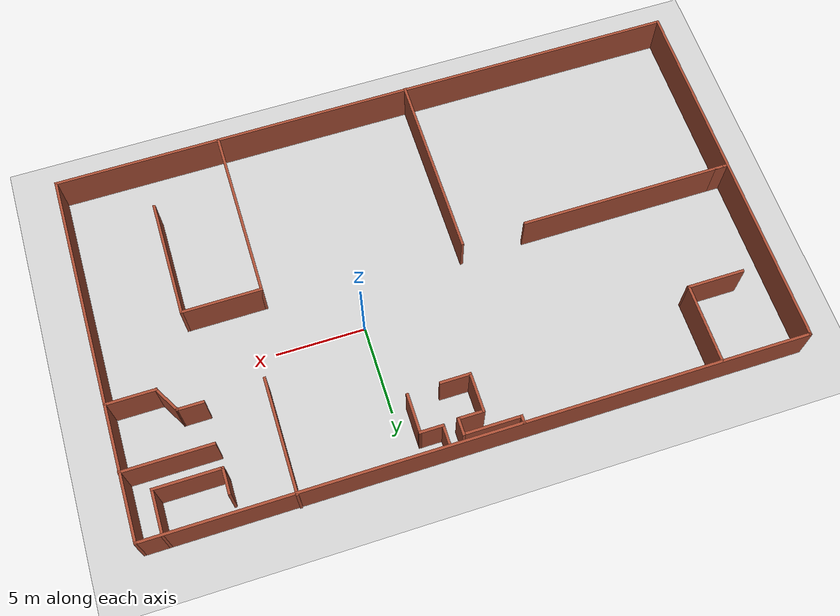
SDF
<sdf version="1.6">
 <world name="default">
  <light name="sun" type="directional">
   <pose>0 0 10 0 -0 0</pose>
   <diffuse>0.8 0.8 0.8 1</diffuse>
   <specular>0.2 0.2 0.2 1</specular>
   <attenuation>
    <range>1000</range>
    <constant>0.9</constant>
    <linear>0.01</linear>
    <quadratic>0.001</quadratic>
   </attenuation>
   <direction>-0.5 0.1 -0.9</direction>
  </light>
  <model name="ground_plane">
   <static>1</static>
   <link name="link">
    <collision name="collision">
     <geometry><plane><normal>0 0 1</normal><size>100 100</size></plane></geometry>
     <surface>
      <contact><collide_bitmask>65535</collide_bitmask></contact>
      <friction><ode><mu>100</mu><mu2>50</mu2></ode></friction>
     </surface>
    </collision>
    <visual name="visual">
     <cast_shadows>0</cast_shadows>
     <geometry><plane><normal>0 0 1</normal><size>100 100</size></plane></geometry>
     <material>
      <script><uri>file://media/materials/scripts/gazebo.material</uri><name>Gazebo/Grey</name></script>
     </material>
    </visual>
   </link>
  </model>
  <gravity>0 0 -9.8</gravity>
  <magnetic_field>6e-06 2.3e-05 -4.2e-05</magnetic_field>
  <atmosphere type="adiabatic"/>
  <physics name="default_physics" default="0" type="ode">
   <max_step_size>0.001</max_step_size>
   <real_time_factor>1</real_time_factor>
   <real_time_update_rate>1000</real_time_update_rate>
  </physics>
  <scene><ambient>0.4 0.4 0.4 1</ambient><background>0.7 0.7 0.7 1</background><shadows>1</shadows></scene>
  <audio><device>default</device></audio>
  <spherical_coordinates>
   <surface_model>EARTH_WGS84</surface_model>
   <latitude_deg>0</latitude_deg>
   <longitude_deg>0</longitude_deg>
   <elevation>0</elevation>
   <heading_deg>0</heading_deg>
  </spherical_coordinates>
  <model name="Untitled">
   <pose>-3.93 -2.08565 0 0 -0 0</pose>
   <link name="Wall_0">
    <collision name="Wall_0_Collision">
     <geometry><box><size>21 0.15 2.5</size></box></geometry>
     <pose>0 0 1.25 0 -0 0</pose>
    </collision>
    <visual name="Wall_0_Visual">
     <pose>0 0 1.25 0 -0 0</pose>
     <geometry><box><size>21 0.15 2.5</size></box></geometry>
     <material>
      <script><uri>file://media/materials/scripts/gazebo.material</uri><name>Gazebo/Bricks</name></script>
      <ambient>1 1 1 1</ambient>
     </material>
     <meta><layer>0</layer></meta>
    </visual>
    <pose>-17.9354 -0.020131 0 0 -0 -1.5708</pose>
   </link>
   <link name="Wall_1">
    <collision name="Wall_1_Collision">
     <geometry><box><size>36 0.15 2.5</size></box></geometry>
     <pose>0 0 1.25 0 -0 0</pose>
    </collision>
    <visual name="Wall_1_Visual">
     <pose>0 0 1.25 0 -0 0</pose>
     <geometry><box><size>36 0.15 2.5</size></box></geometry>
     <material>
      <script><uri>file://media/materials/scripts/gazebo.material</uri><name>Gazebo/Bricks</name></script>
      <ambient>1 1 1 1</ambient>
     </material>
     <meta><layer>0</layer></meta>
    </visual>
    <pose>-0.010376 -10.4451 0 0 -0 0</pose>
   </link>
   <link name="Wall_10">
    <collision name="Wall_10_Collision">
     <geometry><box><size>6.75 0.15 2.5</size></box></geometry>
     <pose>0 0 1.25 0 -0 0</pose>
    </collision>
    <visual name="Wall_10_Visual">
     <pose>0 0 1.25 0 -0 0</pose>
     <geometry><box><size>6.75 0.15 2.5</size></box></geometry>
     <material>
      <script><uri>file://media/materials/scripts/gazebo.material</uri><name>Gazebo/Bricks</name></script>
      <ambient>1 1 1 1</ambient>
     </material>
     <meta><layer>0</layer></meta>
    </visual>
    <pose>13.0562 -4.09155 0 0 -0 -1.5708</pose>
   </link>
   <link name="Wall_12">
    <collision name="Wall_12_Collision">
     <geometry><box><size>2.5 0.15 2.5</size></box></geometry>
     <pose>0 0 1.25 0 -0 0</pose>
    </collision>
    <visual name="Wall_12_Visual">
     <pose>0 0 1.25 0 -0 0</pose>
     <geometry><box><size>2.5 0.15 2.5</size></box></geometry>
     <material>
      <script><uri>file://media/materials/scripts/gazebo.material</uri><name>Gazebo/Bricks</name></script>
      <ambient>1 1 1 1</ambient>
     </material>
     <meta><layer>0</layer></meta>
    </visual>
    <pose>16.5818 9.22987 0 0 -0 -1.5708</pose>
   </link>
   <link name="Wall_13">
    <collision name="Wall_13_Collision">
     <geometry><box><size>3.75 0.15 2.5</size></box></geometry>
     <pose>0 0 1.25 0 -0 0</pose>
    </collision>
    <visual name="Wall_13_Visual">
     <pose>0 0 1.25 0 -0 0</pose>
     <geometry><box><size>3.75 0.15 2.5</size></box></geometry>
     <material>
      <script><uri>file://media/materials/scripts/gazebo.material</uri><name>Gazebo/Bricks</name></script>
      <ambient>1 1 1 1</ambient>
     </material>
     <meta><layer>0</layer></meta>
    </visual>
    <pose>14.7818 8.05487 0 0 -0 3.14159</pose>
   </link>
   <link name="Wall_15">
    <collision name="Wall_15_Collision">
     <geometry><box><size>5 0.15 2.5</size></box></geometry>
     <pose>0 0 1.25 0 -0 0</pose>
    </collision>
    <visual name="Wall_15_Visual">
     <pose>0 0 1.25 0 -0 0</pose>
     <geometry><box><size>5 0.15 2.5</size></box></geometry>
     <material>
      <script><uri>file://media/materials/scripts/gazebo.material</uri><name>Gazebo/Bricks</name></script>
      <ambient>1 1 1 1</ambient>
     </material>
     <meta><layer>0</layer></meta>
    </visual>
    <pose>15.5104 6.7132 0 0 -0 3.14159</pose>
   </link>
   <link name="Wall_17">
    <collision name="Wall_17_Collision">
     <geometry><box><size>1.5 0.15 2.5</size></box></geometry>
     <pose>0 0 1.25 0 -0 0</pose>
    </collision>
    <visual name="Wall_17_Visual">
     <pose>0 0 1.25 0 -0 0</pose>
     <geometry><box><size>1.5 0.15 2.5</size></box></geometry>
     <material>
      <script><uri>file://media/materials/scripts/gazebo.material</uri><name>Gazebo/Bricks</name></script>
      <ambient>1 1 1 1</ambient>
     </material>
     <meta><layer>0</layer></meta>
    </visual>
    <pose>12.9818 8.72987 0 0 -0 1.5708</pose>
   </link>
   <link name="Wall_19">
    <collision name="Wall_19_Collision">
     <geometry><box><size>6.5 0.15 2.5</size></box></geometry>
     <pose>0 0 1.25 0 -0 0</pose>
    </collision>
    <visual name="Wall_19_Visual">
     <pose>0 0 1.25 0 -0 0</pose>
     <geometry><box><size>6.5 0.15 2.5</size></box></geometry>
     <material>
      <script><uri>file://media/materials/scripts/gazebo.material</uri><name>Gazebo/Bricks</name></script>
      <ambient>1 1 1 1</ambient>
     </material>
     <meta><layer>0</layer></meta>
    </visual>
    <pose>9.8137 7.2914 0 0 -0 -1.5708</pose>
   </link>
   <link name="Wall_2">
    <collision name="Wall_2_Collision">
     <geometry><box><size>21 0.15 2.5</size></box></geometry>
     <pose>0 0 1.25 0 -0 0</pose>
    </collision>
    <visual name="Wall_2_Visual">
     <pose>0 0 1.25 0 -0 0</pose>
     <geometry><box><size>21 0.15 2.5</size></box></geometry>
     <material>
      <script><uri>file://media/materials/scripts/gazebo.material</uri><name>Gazebo/Bricks</name></script>
      <ambient>1 1 1 1</ambient>
     </material>
     <meta><layer>0</layer></meta>
    </visual>
    <pose>17.9146 -0.020131 0 0 -0 1.5708</pose>
   </link>
   <link name="Wall_21">
    <collision name="Wall_21_Collision">
     <geometry><box><size>11.75 0.15 2.5</size></box></geometry>
     <pose>0 0 1.25 0 -0 0</pose>
    </collision>
    <visual name="Wall_21_Visual">
     <pose>0 0 1.25 0 -0 0</pose>
     <geometry><box><size>11.75 0.15 2.5</size></box></geometry>
     <material>
      <script><uri>file://media/materials/scripts/gazebo.material</uri><name>Gazebo/Bricks</name></script>
      <ambient>1 1 1 1</ambient>
     </material>
     <meta><layer>0</layer></meta>
    </visual>
    <pose>-11.7662 -0.239453 0 0 -0 0</pose>
   </link>
   <link name="Wall_23">
    <collision name="Wall_23_Collision">
     <geometry><box><size>10.5 0.15 2.5</size></box></geometry>
     <pose>0 0 1.25 0 -0 0</pose>
    </collision>
    <visual name="Wall_23_Visual">
     <pose>0 0 1.25 0 -0 0</pose>
     <geometry><box><size>10.5 0.15 2.5</size></box></geometry>
     <material>
      <script><uri>file://media/materials/scripts/gazebo.material</uri><name>Gazebo/Bricks</name></script>
      <ambient>1 1 1 1</ambient>
     </material>
     <meta><layer>0</layer></meta>
    </visual>
    <pose>-2.30729 -5.2914 0 0 -0 -1.5708</pose>
   </link>
   <link name="Wall_26">
    <collision name="Wall_26_Collision">
     <geometry><box><size>0.75 0.15 2.5</size></box></geometry>
     <pose>0 0 1.25 0 -0 0</pose>
    </collision>
    <visual name="Wall_26_Visual">
     <pose>0 0 1.25 0 -0 0</pose>
     <geometry><box><size>0.75 0.15 2.5</size></box></geometry>
     <material>
      <script><uri>file://media/materials/scripts/gazebo.material</uri><name>Gazebo/Bricks</name></script>
      <ambient>1 1 1 1</ambient>
     </material>
     <meta><layer>0</layer></meta>
    </visual>
    <pose>-17.5274 -0.23764 0 0 -0 3.14159</pose>
   </link>
   <link name="Wall_28">
    <collision name="Wall_28_Collision">
     <geometry><box><size>0.5 0.15 2.5</size></box></geometry>
     <pose>0 0 1.25 0 -0 0</pose>
    </collision>
    <visual name="Wall_28_Visual">
     <pose>0 0 1.25 0 -0 0</pose>
     <geometry><box><size>0.5 0.15 2.5</size></box></geometry>
     <material>
      <script><uri>file://media/materials/scripts/gazebo.material</uri><name>Gazebo/Bricks</name></script>
      <ambient>1 1 1 1</ambient>
     </material>
     <meta><layer>0</layer></meta>
    </visual>
    <pose>-2.07789 10.2231 0 0 -0 -1.5708</pose>
   </link>
   <link name="Wall_29">
    <collision name="Wall_29_Collision">
     <geometry><box><size>3.25 0.15 2.5</size></box></geometry>
     <pose>0 0 1.25 0 -0 0</pose>
    </collision>
    <visual name="Wall_29_Visual">
     <pose>0 0 1.25 0 -0 0</pose>
     <geometry><box><size>3.25 0.15 2.5</size></box></geometry>
     <material>
      <script><uri>file://media/materials/scripts/gazebo.material</uri><name>Gazebo/Bricks</name></script>
      <ambient>1 1 1 1</ambient>
     </material>
     <meta><layer>0</layer></meta>
    </visual>
    <pose>-0.527885 10.0481 0 0 -0 0</pose>
   </link>
   <link name="Wall_3">
    <collision name="Wall_3_Collision">
     <geometry><box><size>36 0.15 2.5</size></box></geometry>
     <pose>0 0 1.25 0 -0 0</pose>
    </collision>
    <visual name="Wall_3_Visual">
     <pose>0 0 1.25 0 -0 0</pose>
     <geometry><box><size>36 0.15 2.5</size></box></geometry>
     <material>
      <script><uri>file://media/materials/scripts/gazebo.material</uri><name>Gazebo/Bricks</name></script>
      <ambient>1 1 1 1</ambient>
     </material>
     <meta><layer>0</layer></meta>
    </visual>
    <pose>-0.010376 10.4049 0 0 -0 3.14159</pose>
   </link>
   <link name="Wall_30">
    <collision name="Wall_30_Collision">
     <geometry><box><size>1 0.15 2.5</size></box></geometry>
     <pose>0 0 1.25 0 -0 0</pose>
    </collision>
    <visual name="Wall_30_Visual">
     <pose>0 0 1.25 0 -0 0</pose>
     <geometry><box><size>1 0.15 2.5</size></box></geometry>
     <material>
      <script><uri>file://media/materials/scripts/gazebo.material</uri><name>Gazebo/Bricks</name></script>
      <ambient>1 1 1 1</ambient>
     </material>
     <meta><layer>0</layer></meta>
    </visual>
    <pose>1.02212 9.62311 0 0 -0 -1.5708</pose>
   </link>
   <link name="Wall_32">
    <collision name="Wall_32_Collision">
     <geometry><box><size>1.25 0.15 2.5</size></box></geometry>
     <pose>0 0 1.25 0 -0 0</pose>
    </collision>
    <visual name="Wall_32_Visual">
     <pose>0 0 1.25 0 -0 0</pose>
     <geometry><box><size>1.25 0.15 2.5</size></box></geometry>
     <material>
      <script><uri>file://media/materials/scripts/gazebo.material</uri><name>Gazebo/Bricks</name></script>
      <ambient>1 1 1 1</ambient>
     </material>
     <meta><layer>0</layer></meta>
    </visual>
    <pose>1.8599 9.84811 0 0 -0 -1.5708</pose>
   </link>
   <link name="Wall_34">
    <collision name="Wall_34_Collision">
     <geometry><box><size>1.5 0.15 2.5</size></box></geometry>
     <pose>0 0 1.25 0 -0 0</pose>
    </collision>
    <visual name="Wall_34_Visual">
     <pose>0 0 1.25 0 -0 0</pose>
     <geometry><box><size>1.5 0.15 2.5</size></box></geometry>
     <material>
      <script><uri>file://media/materials/scripts/gazebo.material</uri><name>Gazebo/Bricks</name></script>
      <ambient>1 1 1 1</ambient>
     </material>
     <meta><layer>0</layer></meta>
    </visual>
    <pose>0.347115 9.19811 0 0 -0 3.14159</pose>
   </link>
   <link name="Wall_35">
    <collision name="Wall_35_Collision">
     <geometry><box><size>2.25 0.15 2.5</size></box></geometry>
     <pose>0 0 1.25 0 -0 0</pose>
    </collision>
    <visual name="Wall_35_Visual">
     <pose>0 0 1.25 0 -0 0</pose>
     <geometry><box><size>2.25 0.15 2.5</size></box></geometry>
     <material>
      <script><uri>file://media/materials/scripts/gazebo.material</uri><name>Gazebo/Bricks</name></script>
      <ambient>1 1 1 1</ambient>
     </material>
     <meta><layer>0</layer></meta>
    </visual>
    <pose>-0.327885 8.14811 0 0 -0 -1.5708</pose>
   </link>
   <link name="Wall_37">
    <collision name="Wall_37_Collision">
     <geometry><box><size>0.15 0.15 2.5</size></box></geometry>
     <pose>0 0 1.25 0 -0 0</pose>
    </collision>
    <visual name="Wall_37_Visual">
     <pose>0 0 1.25 0 -0 0</pose>
     <geometry><box><size>0.15 0.15 2.5</size></box></geometry>
     <material>
      <script><uri>file://media/materials/scripts/gazebo.material</uri><name>Gazebo/Grey</name></script>
      <ambient>1 1 1 1</ambient>
     </material>
     <meta><layer>0</layer></meta>
    </visual>
    <pose>1.8599 9.29811 0 0 -0 0</pose>
   </link>
   <link name="Wall_39">
    <collision name="Wall_39_Collision">
     <geometry><box><size>2.25 0.15 2.5</size></box></geometry>
     <pose>0 0 1.25 0 -0 0</pose>
    </collision>
    <visual name="Wall_39_Visual">
     <pose>0 0 1.25 0 -0 0</pose>
     <geometry><box><size>2.25 0.15 2.5</size></box></geometry>
     <material>
      <script><uri>file://media/materials/scripts/gazebo.material</uri><name>Gazebo/Bricks</name></script>
      <ambient>1 1 1 1</ambient>
     </material>
     <meta><layer>0</layer></meta>
    </visual>
    <pose>3.09046 8.24866 0 0 -0 1.5708</pose>
   </link>
   <link name="Wall_40">
    <collision name="Wall_40_Collision">
     <geometry><box><size>1.38056 0.15 2.5</size></box></geometry>
     <pose>0 0 1.25 0 -0 0</pose>
    </collision>
    <visual name="Wall_40_Visual">
     <pose>0 0 1.25 0 -0 0</pose>
     <geometry><box><size>1.38056 0.15 2.5</size></box></geometry>
     <material>
      <script><uri>file://media/materials/scripts/gazebo.material</uri><name>Gazebo/Bricks</name></script>
      <ambient>1 1 1 1</ambient>
     </material>
     <meta><layer>0</layer></meta>
    </visual>
    <pose>2.47518 9.29838 0 0 -0 -3.14114</pose>
   </link>
   <link name="Wall_42">
    <collision name="Wall_42_Collision">
     <geometry><box><size>1.75 0.15 2.5</size></box></geometry>
     <pose>0 0 1.25 0 -0 0</pose>
    </collision>
    <visual name="Wall_42_Visual">
     <pose>0 0 1.25 0 -0 0</pose>
     <geometry><box><size>1.75 0.15 2.5</size></box></geometry>
     <material>
      <script><uri>file://media/materials/scripts/gazebo.material</uri><name>Gazebo/Bricks</name></script>
      <ambient>1 1 1 1</ambient>
     </material>
     <meta><layer>0</layer></meta>
    </visual>
    <pose>0.472115 7.09811 0 0 -0 0</pose>
   </link>
   <link name="Wall_44">
    <collision name="Wall_44_Collision">
     <geometry><box><size>2.75 0.15 2.5</size></box></geometry>
     <pose>0 0 1.25 0 -0 0</pose>
    </collision>
    <visual name="Wall_44_Visual">
     <pose>0 0 1.25 0 -0 0</pose>
     <geometry><box><size>2.75 0.15 2.5</size></box></geometry>
     <material>
      <script><uri>file://media/materials/scripts/gazebo.material</uri><name>Gazebo/Bricks</name></script>
      <ambient>1 1 1 1</ambient>
     </material>
     <meta><layer>0</layer></meta>
    </visual>
    <pose>16.5571 3.01476 0 0 -0 3.14159</pose>
   </link>
   <link name="Wall_45">
    <collision name="Wall_45_Collision">
     <geometry><box><size>1.75 0.15 2.5</size></box></geometry>
     <pose>0 0 1.25 0 -0 0</pose>
    </collision>
    <visual name="Wall_45_Visual">
     <pose>0 0 1.25 0 -0 0</pose>
     <geometry><box><size>1.75 0.15 2.5</size></box></geometry>
     <material>
      <script><uri>file://media/materials/scripts/gazebo.material</uri><name>Gazebo/Bricks</name></script>
      <ambient>1 1 1 1</ambient>
     </material>
     <meta><layer>0</layer></meta>
    </visual>
    <pose>14.8571 3.70758 0 0 -0 2.0944</pose>
   </link>
   <link name="Wall_46">
    <collision name="Wall_46_Collision">
     <geometry><box><size>1.5 0.15 2.5</size></box></geometry>
     <pose>0 0 1.25 0 -0 0</pose>
    </collision>
    <visual name="Wall_46_Visual">
     <pose>0 0 1.25 0 -0 0</pose>
     <geometry><box><size>1.5 0.15 2.5</size></box></geometry>
     <material>
      <script><uri>file://media/materials/scripts/gazebo.material</uri><name>Gazebo/Bricks</name></script>
      <ambient>1 1 1 1</ambient>
     </material>
     <meta><layer>0</layer></meta>
    </visual>
    <pose>13.7821 4.4004 0 0 -0 3.14159</pose>
   </link>
   <link name="Wall_5">
    <collision name="Wall_5_Collision">
     <geometry><box><size>4.5 0.15 2.5</size></box></geometry>
     <pose>0 0 1.25 0 -0 0</pose>
    </collision>
    <visual name="Wall_5_Visual">
     <pose>0 0 1.25 0 -0 0</pose>
     <geometry><box><size>4.5 0.15 2.5</size></box></geometry>
     <material>
      <script><uri>file://media/materials/scripts/gazebo.material</uri><name>Gazebo/Bricks</name></script>
      <ambient>1 1 1 1</ambient>
     </material>
     <meta><layer>0</layer></meta>
    </visual>
    <pose>-12.9516 8.16834 0 0 -0 -1.5708</pose>
   </link>
   <link name="Wall_6">
    <collision name="Wall_6_Collision">
     <geometry><box><size>3.25 0.15 2.5</size></box></geometry>
     <pose>0 0 1.25 0 -0 0</pose>
    </collision>
    <visual name="Wall_6_Visual">
     <pose>0 0 1.25 0 -0 0</pose>
     <geometry><box><size>3.25 0.15 2.5</size></box></geometry>
     <material>
      <script><uri>file://media/materials/scripts/gazebo.material</uri><name>Gazebo/Bricks</name></script>
      <ambient>1 1 1 1</ambient>
     </material>
     <meta><layer>0</layer></meta>
    </visual>
    <pose>-14.5016 5.99334 0 0 -0 3.14159</pose>
   </link>
   <link name="Wall_8">
    <collision name="Wall_8_Collision">
     <geometry><box><size>9.75 0.15 2.5</size></box></geometry>
     <pose>0 0 1.25 0 -0 0</pose>
    </collision>
    <visual name="Wall_8_Visual">
     <pose>0 0 1.25 0 -0 0</pose>
     <geometry><box><size>9.75 0.15 2.5</size></box></geometry>
     <material>
      <script><uri>file://media/materials/scripts/gazebo.material</uri><name>Gazebo/Bricks</name></script>
      <ambient>1 1 1 1</ambient>
     </material>
     <meta><layer>0</layer></meta>
    </visual>
    <pose>8.70619 -5.59155 0 0 -0 1.5708</pose>
   </link>
   <link name="Wall_9">
    <collision name="Wall_9_Collision">
     <geometry><box><size>4.5 0.15 2.5</size></box></geometry>
     <pose>0 0 1.25 0 -0 0</pose>
    </collision>
    <visual name="Wall_9_Visual">
     <pose>0 0 1.25 0 -0 0</pose>
     <geometry><box><size>4.5 0.15 2.5</size></box></geometry>
     <material>
      <script><uri>file://media/materials/scripts/gazebo.material</uri><name>Gazebo/Bricks</name></script>
      <ambient>1 1 1 1</ambient>
     </material>
     <meta><layer>0</layer></meta>
    </visual>
    <pose>10.8812 -0.791553 0 0 -0 0</pose>
   </link>
   <static>1</static>
  </model>
 </world>
</sdf>
